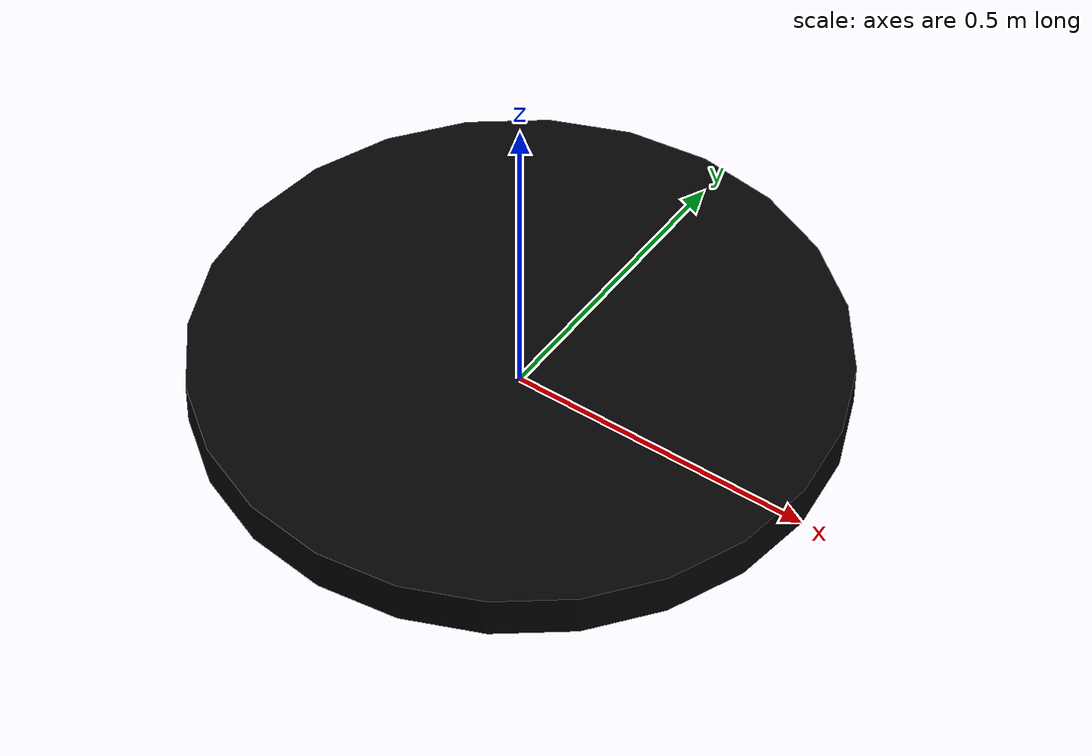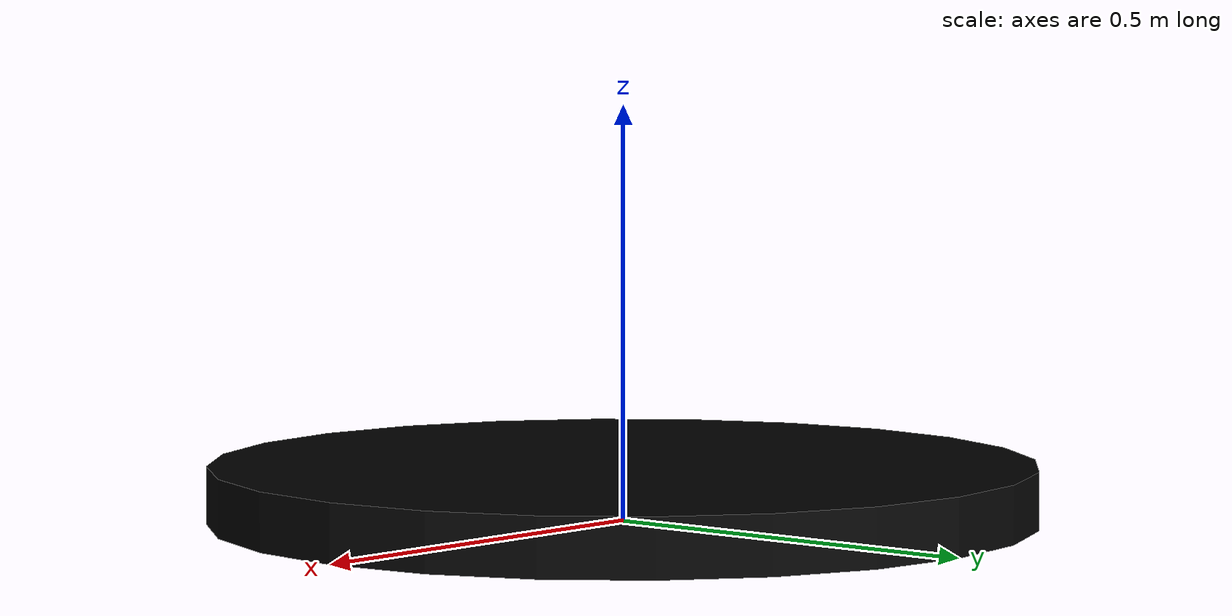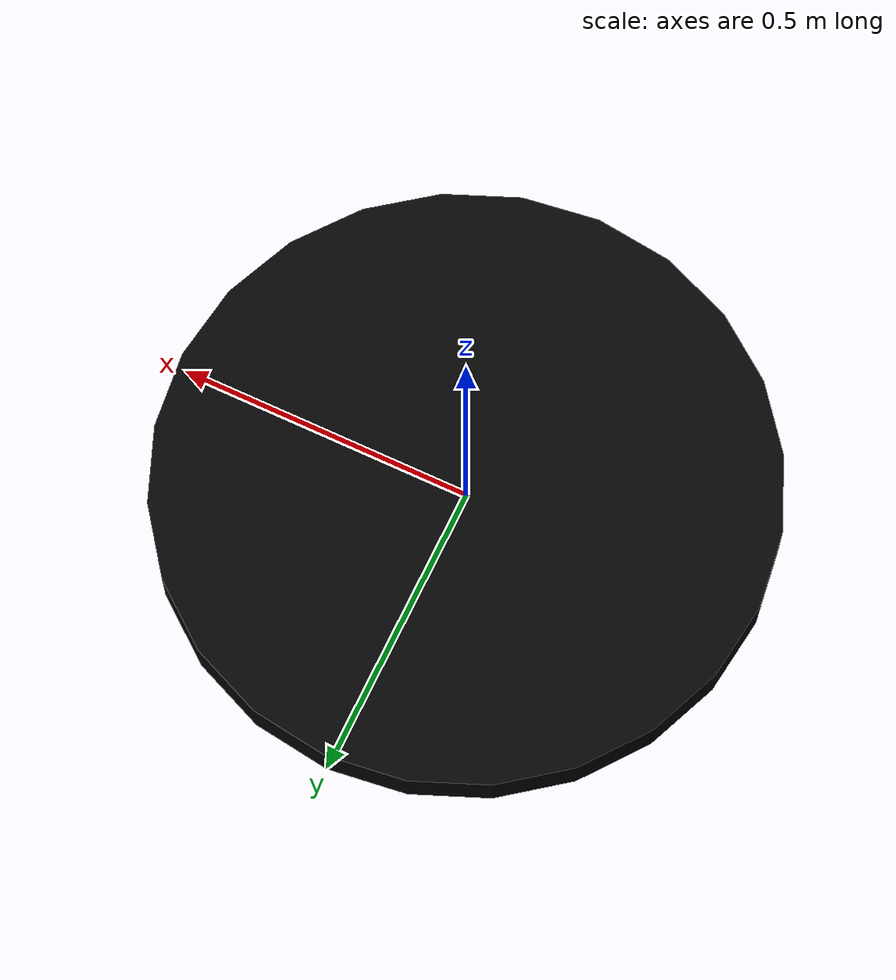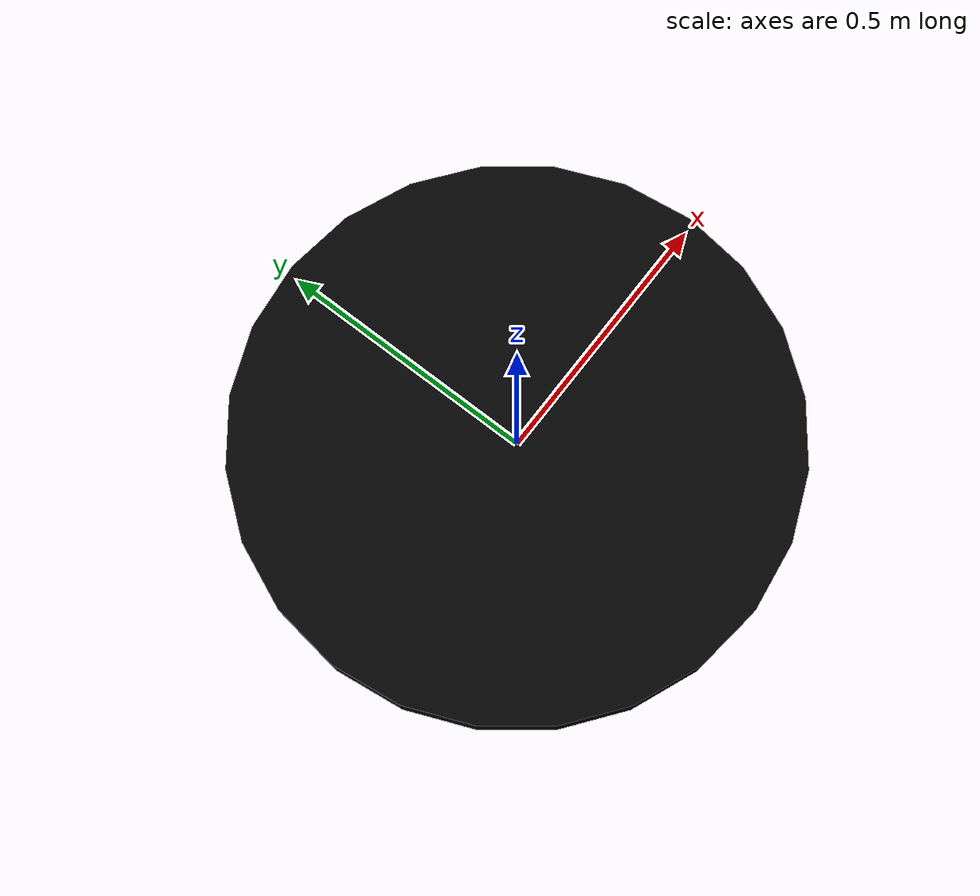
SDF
<?xml version="1.0"?>
<sdf version="1.9">
  <model name="tecnofest_startpoint_black">
    <static>true</static>
    <link name="marker">
      <visual name="black_disk">
        <pose>0 0 0.035 0 0 0</pose>
        <geometry>
          <cylinder>
            <radius>0.50</radius>
            <length>0.07</length>
          </cylinder>
        </geometry>
        <material>
          <ambient>0.005 0.005 0.005 1</ambient>
          <diffuse>0.015 0.015 0.015 1</diffuse>
          <specular>0.03 0.03 0.03 1</specular>
        </material>
      </visual>
    </link>
  </model>
</sdf>
